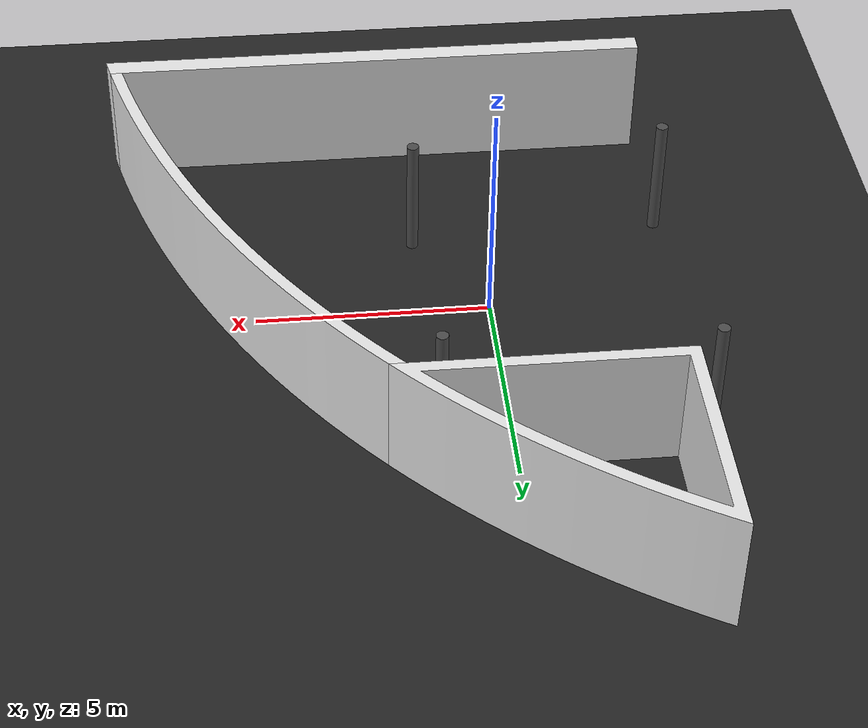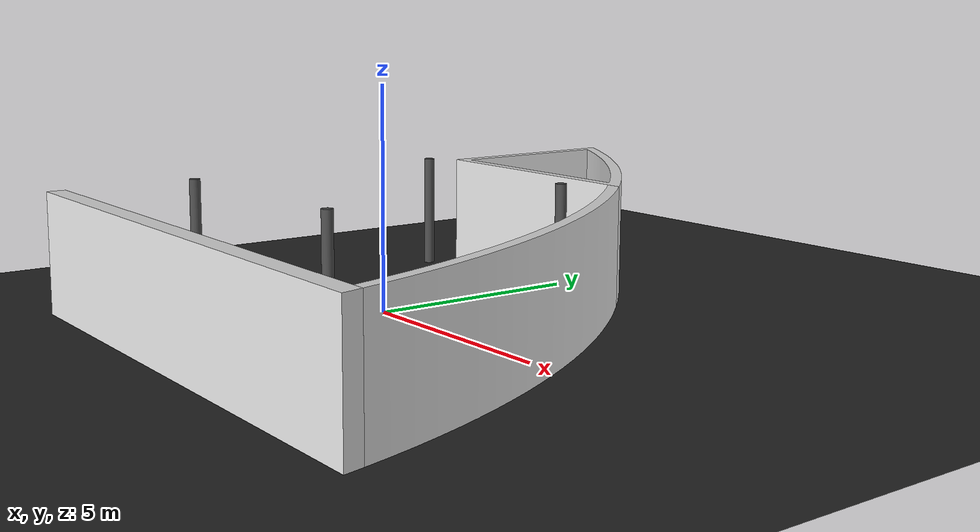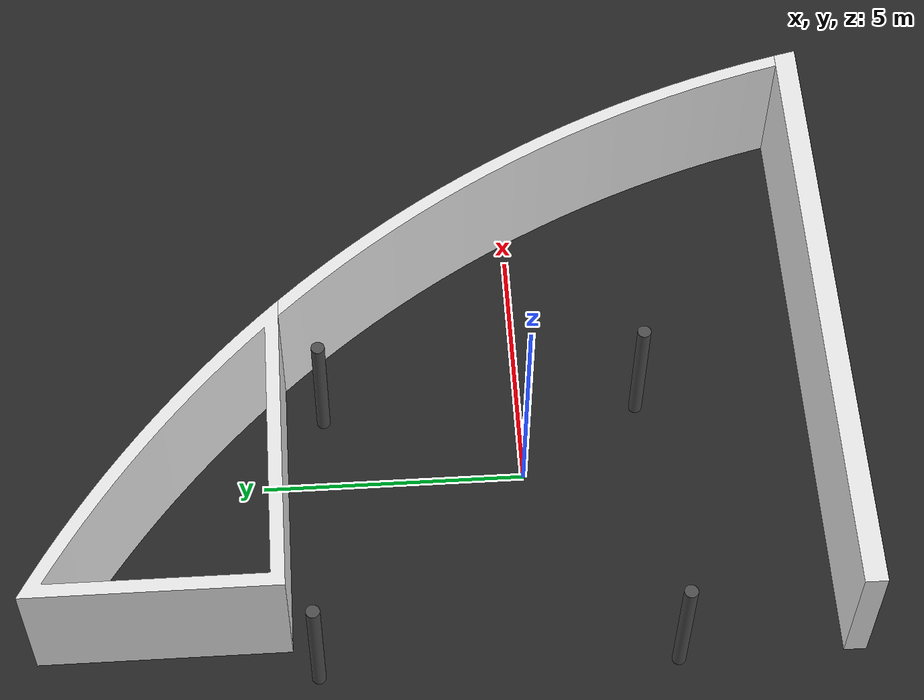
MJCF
<mujoco model="Lagyi">
  <default class="main">
<!--
    rotate by 90 degrees about the vertical axis
    to match the optitrack coordinate system
 -->
    <geom quat="0.7071 0 0 0.7071"/>

    <default class="lagyi">
      <geom quat="0 0 0.7071 0.7071" rgba="0.9 0.9 0.9 1"/>
    </default>

    <default class="pole">
      <geom rgba="0.1 0.1 0.1 1"/>
      <default class="pole_top">
        <geom type="cylinder" size="0.022 0.5" pos="0 0 0.5"/>
      </default>
      <default class="pole_bottom1">
        <geom type="box" size="0.02 0.205 0.02" pos="0 0 0.02"/>
        <default class="pole_bottom2">
          <geom quat="1 0 0 0"/>
        </default>
      </default>
    </default>

    <default class="landing_zone">
      <geom type="box" pos="0 0 0.01" size="0.1175 0.0975 0.01" rgba="0.8 0.8 0.8 1.0"/>
    </default>
  </default>

  <compiler angle="radian" meshdir=""/>
  <option timestep="0.005"/>
  <visual>
    <quality shadowsize="8192"/>
  </visual>

  <asset>
    <mesh file="3d_models/cf2_assembly.stl" name="drone" smoothnormal="true" scale="1.5 1.5 1.5"/>
    <mesh file="3d_models/lagyi_cockpit.stl" name="cockpit" smoothnormal="true" scale="0.0085 0.0085 0.0085"/>
    <mesh file="3d_models/lagyi_fal1.stl" name="fal1" smoothnormal="true" scale="0.0085 0.0085 0.0085"/>
    <mesh file="3d_models/lagyi_fal2.stl" name="fal2" smoothnormal="true" scale="0.0085 0.0085 0.0085"/>
    <mesh file="3d_models/lagyi_oszlop1.stl" name="oszlop1" smoothnormal="true" scale="0.0085 0.0085 0.0085"/>
    <mesh file="3d_models/lagyi_oszlop2.stl" name="oszlop2" smoothnormal="true" scale="0.0085 0.0085 0.0085"/>
    <mesh file="3d_models/lagyi_oszlop3.stl" name="oszlop3" smoothnormal="true" scale="0.0085 0.0085 0.0085"/>
    <mesh file="3d_models/lagyi_oszlop4.stl" name="oszlop4" smoothnormal="true" scale="0.0085 0.0085 0.0085"/>
    <texture type="skybox" builtin="gradient" rgb1=".3 .5 .7" rgb2="0 0 0" width="512" height="512"/>
    <texture name="grid" type="2d" builtin="checker" width="512" height="512" rgb1=".1 .1 .1" rgb2=".2 .2 .2"/>
    <texture name="tex-carpet" type="2d" file="textures/carpet_lagyi4.png"/>
    <texture name="tex-roundabout" type="2d" file="textures/roundabout.png"/>
    <texture name="tex-hospital" type="2d" file="textures/hospital.png"/>
    <texture name="tex-post_office" type="2d" file="textures/post_office.png"/>
    <texture name="tex-airport" type="2d" file="textures/airport.png"/>
    <texture name="tex-parking_lot" type="2d" file="textures/parking_lot.png"/>
    <texture name="tex-sztaki" type="2d" file="textures/sztaki.png"/>
    <material name="grid" texture="grid" texrepeat="1 1" texuniform="true" reflectance=".05"/>
    <material name="mat-carpet" shininess="0.1" texrepeat="0.1308 0.1308" texture="tex-carpet" texuniform="true"/>
    <material name="mat-roundabout" reflectance="0.7" texrepeat="0.667 0.667" texture="tex-roundabout" texuniform="true"/>
    <material name="mat-hospital" reflectance="0.7" texrepeat="7.843 7.692" texture="tex-hospital" texuniform="true"/>
    <material name="mat-post_office" reflectance="0.7" texrepeat="7.843 7.843" texture="tex-post_office" texuniform="true"/>
    <material name="mat-airport" reflectance="0.7" texrepeat="9.524 9.524" texture="tex-airport" texuniform="true"/>
    <material name="mat-parking_lot" reflectance="0.7" texrepeat="9.524 8.696" texture="tex-parking_lot" texuniform="true"/>
    <material name="mat-sztaki" reflectance="0.7" texrepeat="9.524 9.524" texture="tex-sztaki" texuniform="true"/>
  </asset>

  <worldbody>
    <camera pos="2.867 -5.173 1.776" xyaxes="0.875 0.485 0.000 -0.139 0.252 0.958"/>
    <geom size="20 20 .05" type="plane" material="grid" condim="3"/>

    <light dir="0 -0.3 -1" diffuse=".9 .9 .9" specular="0.6 0.9 0.6" pos="1 1 15" cutoff="70"/>
    <light dir="-.2 1 -.4" diffuse=".9 .9 .9" specular="0.6 0.9 0.6" pos="2 -5 6" cutoff="70"/>

    <geom name="roundabout" size="1.5 1.5 .05" quat="0.7071 0 0 0.7071" pos="0 0 0.002" type="plane" material="mat-roundabout" condim="3"/>
    <geom name="carpet" size="7.644 7.644 .001" pos="3.15 1.6 0.001" quat="0.7071 0 0 0.7071" type="plane" material="mat-carpet"/>

    <body name="lagyi" pos="1.45 -2.3 0" childclass="lagyi">
      <geom name="cockpit" type="mesh" mesh="cockpit"/>
      <geom name="fal1" type="mesh" mesh="fal1"/>
      <geom name="fal2" type="mesh" mesh="fal2"/>
      <geom name="oszlop1" type="mesh" mesh="oszlop1" rgba="0.3 0.3 0.3 1"/>
      <geom name="oszlop2" type="mesh" mesh="oszlop2" rgba="0.3 0.3 0.3 1"/>
      <geom name="oszlop3" type="mesh" mesh="oszlop3" rgba="0.3 0.3 0.3 1"/>
      <geom name="oszlop4" type="mesh" mesh="oszlop4" rgba="0.3 0.3 0.3 1"/>
    </body>

  </worldbody>

</mujoco>
